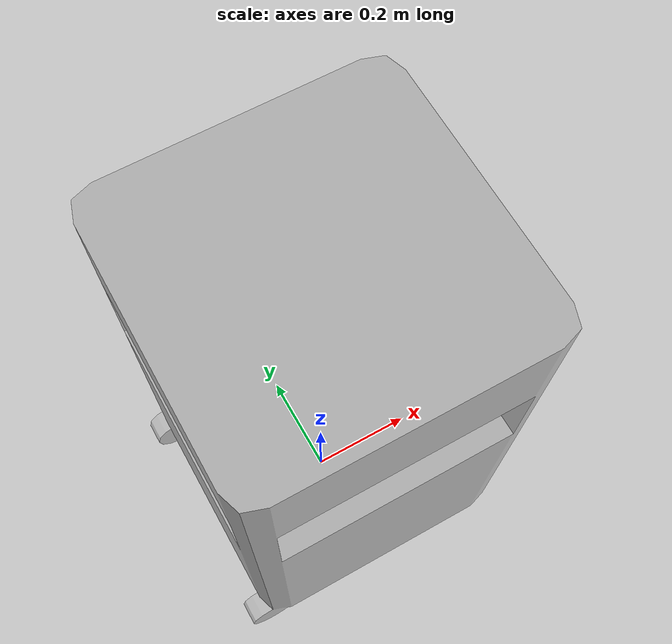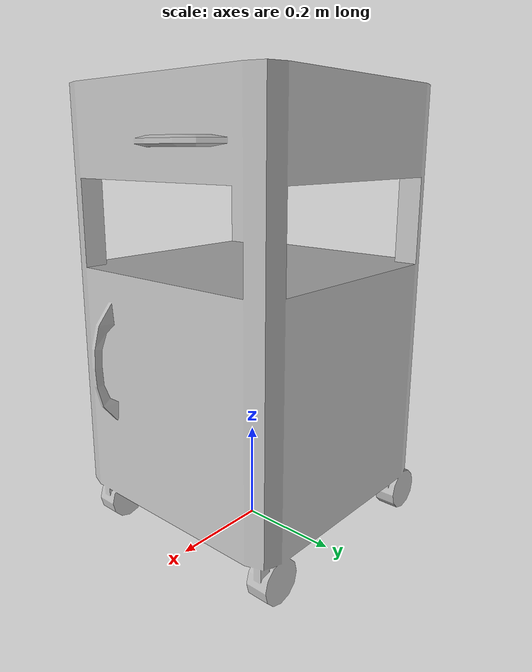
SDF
<?xml version="1.0"?>

<sdf version="1.6">
  <model name='BedsideTable'>
    <link name="body">
      <pose>0 0 0 0 0 -1.5708</pose>

      <visual name="visual">
        <geometry>
          <mesh>
            <uri>model://BedsideTable/meshes/BedsideTable.obj</uri>
          </mesh>
        </geometry>
      </visual>

      <collision name="collision">
        <geometry>
          <mesh>
            <uri>model://BedsideTable/meshes/BedsideTable_Col.obj</uri>
          </mesh>
        </geometry>
      </collision>

    </link>
  </model>
</sdf>
